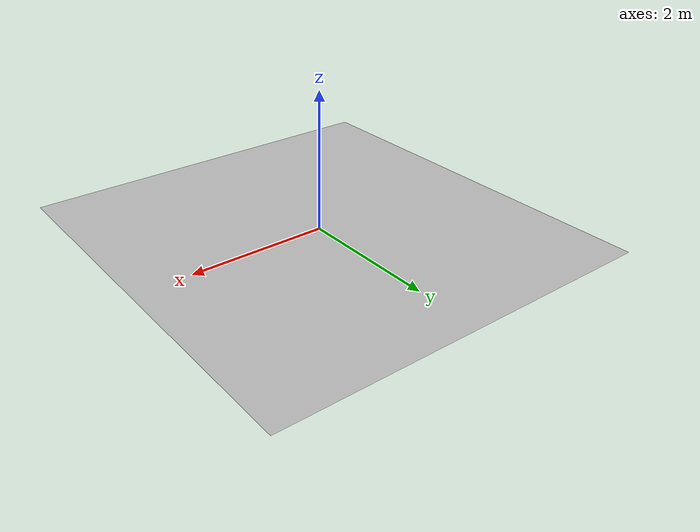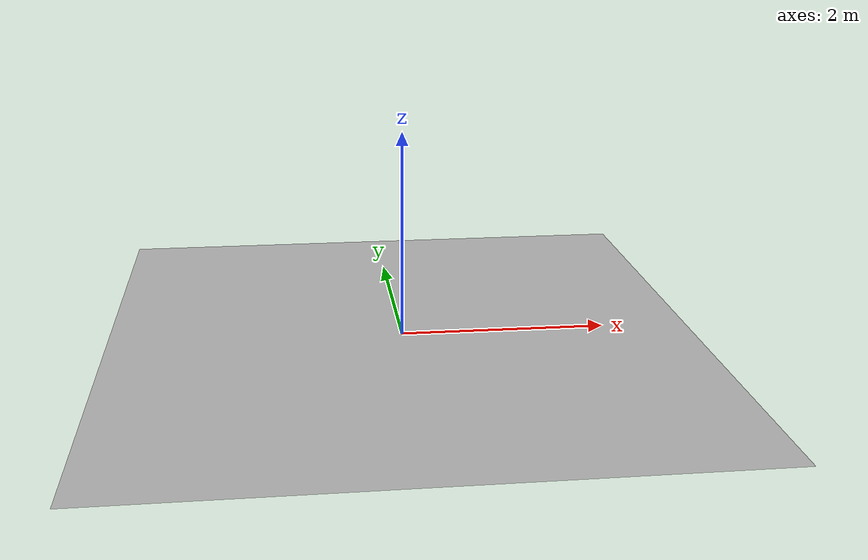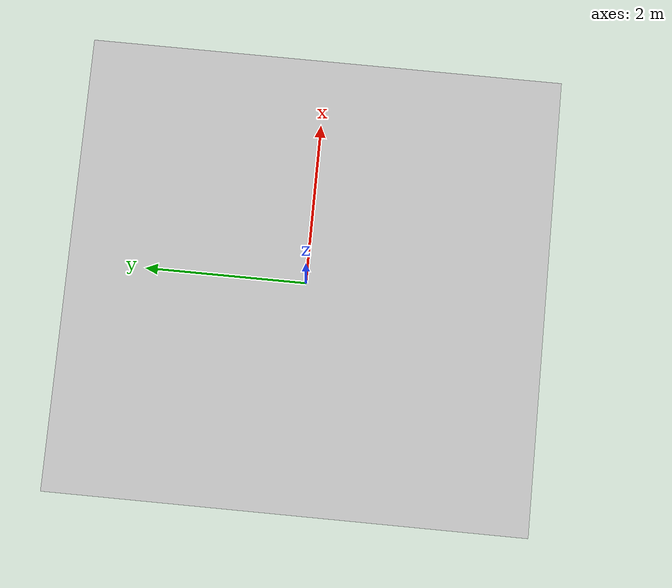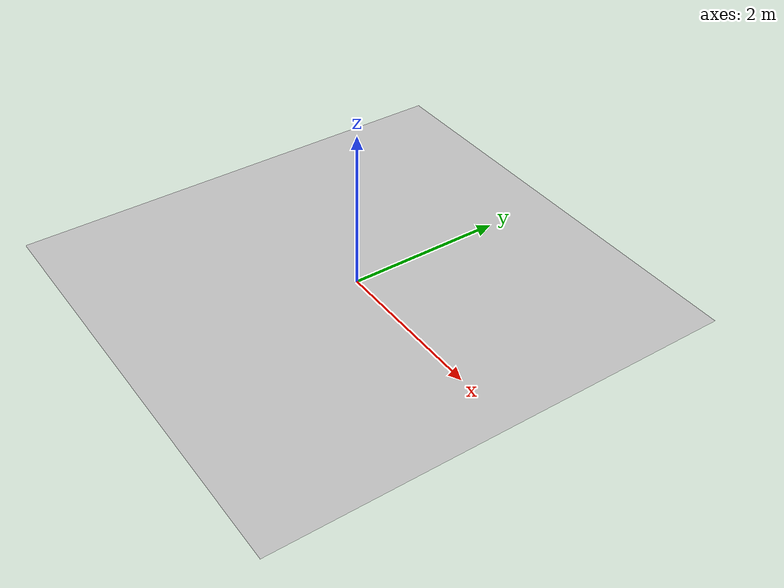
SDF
<?xml version="1.0" ?>
<sdf version="1.6">
  <model name="ground_logo_corner">
    <static>true</static>
    <link name="link">
      <visual name="visual">
          <pose>0.0 0 0.001 0 0 0</pose>
        <geometry>
          <mesh>
            <scale>0.5 0.5 0.5</scale>
            <uri>model://ground_logo_corner/meshes/ground_logo.dae</uri>
          </mesh>
        </geometry>
      </visual>
    </link>
  </model>
</sdf>
